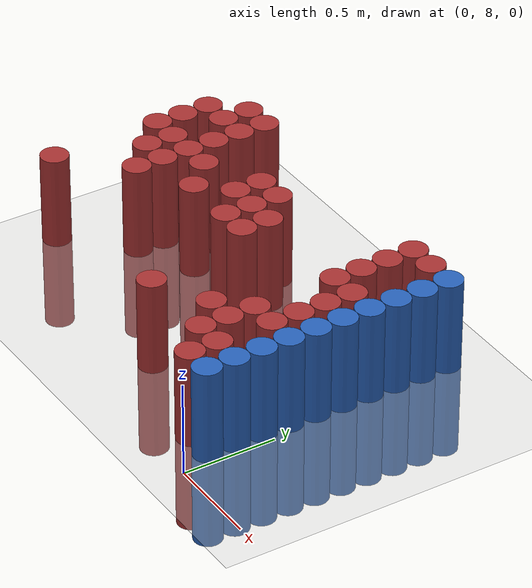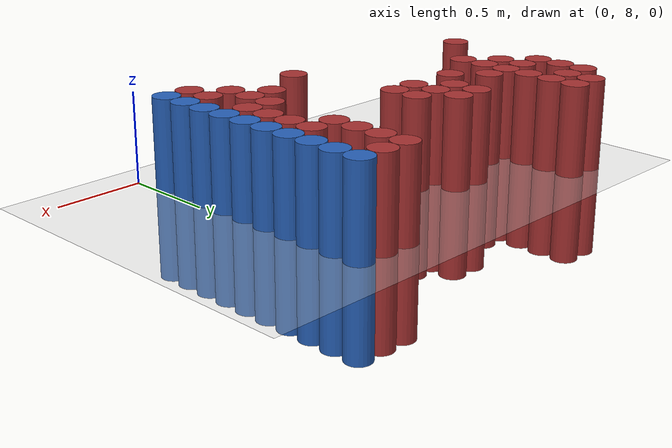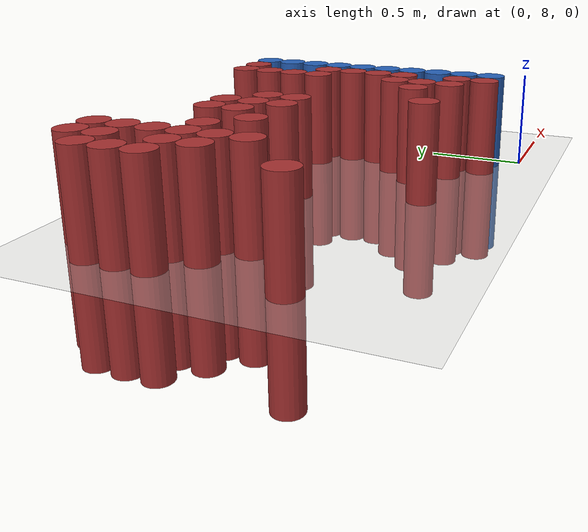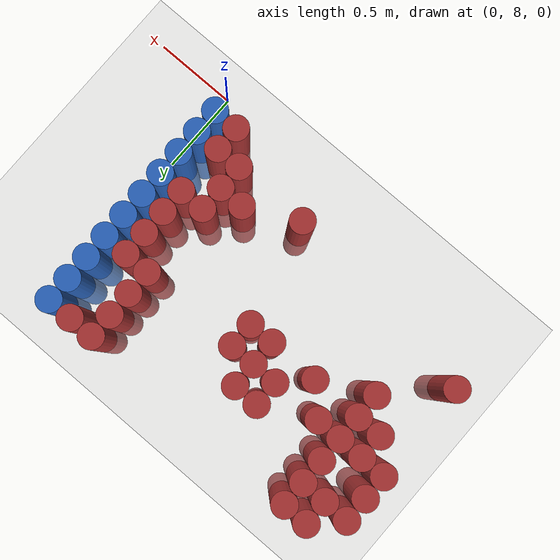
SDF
<sdf version="1.6">
 <world name="default">
  <model name="ground_plane">
   <static>1</static>
   <link name="link">
    <collision name="collision">
     <geometry><plane><normal>0 0 1</normal><size>100 100</size></plane></geometry>
     <surface><friction><ode><mu>100</mu><mu2>50</mu2></ode></friction></surface>
    </collision>
    <visual name="visual">
     <cast_shadows>0</cast_shadows>
     <geometry><plane><normal>0 0 1</normal><size>100 100</size></plane></geometry>
     <material>
      <script><uri>file://media/materials/scripts/gazebo.material</uri><name>Gazebo/Grey</name></script>
     </material>
    </visual>
   </link>
  </model>
  <model name="unit_cylinder_213">
   <static>1</static>
   <pose>-2.025000 8.475000 0.000000 0.000000 0.000000 0.000000</pose>
   <link name="link">
    <inertial>
     <mass>1</mass>
     <inertia><ixx>0.145833</ixx><ixy>0</ixy><ixz>0</ixz><iyy>0.145833</iyy><iyz>0</iyz><izz>0.125</izz></inertia>
    </inertial>
    <collision name="collision">
     <geometry><cylinder><radius>0.075000</radius><length>1</length></cylinder></geometry>
    </collision>
    <visual name="visual">
     <geometry><cylinder><radius>0.075000</radius><length>1</length></cylinder></geometry>
     <material>
      <ambient>0.648000 0.192000 0.192000 1</ambient>
      <diffuse>0.648000 0.192000 0.192000 1</diffuse>
     </material>
     <material>
      <script><name>Gazebo/Grey</name><uri>file://media/materials/scripts/gazebo.material</uri></script>
     </material>
    </visual>
   </link>
  </model>
  <model name="unit_cylinder_214">
   <static>1</static>
   <pose>-2.025000 9.075000 0.000000 0.000000 0.000000 0.000000</pose>
   <link name="link">
    <inertial>
     <mass>1</mass>
     <inertia><ixx>0.145833</ixx><ixy>0</ixy><ixz>0</ixz><iyy>0.145833</iyy><iyz>0</iyz><izz>0.125</izz></inertia>
    </inertial>
    <collision name="collision">
     <geometry><cylinder><radius>0.075000</radius><length>1</length></cylinder></geometry>
    </collision>
    <visual name="visual">
     <geometry><cylinder><radius>0.075000</radius><length>1</length></cylinder></geometry>
     <material>
      <ambient>0.648000 0.192000 0.192000 1</ambient>
      <diffuse>0.648000 0.192000 0.192000 1</diffuse>
     </material>
     <material>
      <script><name>Gazebo/Grey</name><uri>file://media/materials/scripts/gazebo.material</uri></script>
     </material>
    </visual>
   </link>
  </model>
  <model name="unit_cylinder_215">
   <static>1</static>
   <pose>-2.025000 9.225000 0.000000 0.000000 0.000000 0.000000</pose>
   <link name="link">
    <inertial>
     <mass>1</mass>
     <inertia><ixx>0.145833</ixx><ixy>0</ixy><ixz>0</ixz><iyy>0.145833</iyy><iyz>0</iyz><izz>0.125</izz></inertia>
    </inertial>
    <collision name="collision">
     <geometry><cylinder><radius>0.075000</radius><length>1</length></cylinder></geometry>
    </collision>
    <visual name="visual">
     <geometry><cylinder><radius>0.075000</radius><length>1</length></cylinder></geometry>
     <material>
      <ambient>0.648000 0.192000 0.192000 1</ambient>
      <diffuse>0.648000 0.192000 0.192000 1</diffuse>
     </material>
     <material>
      <script><name>Gazebo/Grey</name><uri>file://media/materials/scripts/gazebo.material</uri></script>
     </material>
    </visual>
   </link>
  </model>
  <model name="unit_cylinder_216">
   <static>1</static>
   <pose>-2.025000 9.375000 0.000000 0.000000 0.000000 0.000000</pose>
   <link name="link">
    <inertial>
     <mass>1</mass>
     <inertia><ixx>0.145833</ixx><ixy>0</ixy><ixz>0</ixz><iyy>0.145833</iyy><iyz>0</iyz><izz>0.125</izz></inertia>
    </inertial>
    <collision name="collision">
     <geometry><cylinder><radius>0.075000</radius><length>1</length></cylinder></geometry>
    </collision>
    <visual name="visual">
     <geometry><cylinder><radius>0.075000</radius><length>1</length></cylinder></geometry>
     <material>
      <ambient>0.648000 0.192000 0.192000 1</ambient>
      <diffuse>0.648000 0.192000 0.192000 1</diffuse>
     </material>
     <material>
      <script><name>Gazebo/Grey</name><uri>file://media/materials/scripts/gazebo.material</uri></script>
     </material>
    </visual>
   </link>
  </model>
  <model name="unit_cylinder_221">
   <static>1</static>
   <pose>-1.875000 8.925000 0.000000 0.000000 0.000000 0.000000</pose>
   <link name="link">
    <inertial>
     <mass>1</mass>
     <inertia><ixx>0.145833</ixx><ixy>0</ixy><ixz>0</ixz><iyy>0.145833</iyy><iyz>0</iyz><izz>0.125</izz></inertia>
    </inertial>
    <collision name="collision">
     <geometry><cylinder><radius>0.075000</radius><length>1</length></cylinder></geometry>
    </collision>
    <visual name="visual">
     <geometry><cylinder><radius>0.075000</radius><length>1</length></cylinder></geometry>
     <material>
      <ambient>0.648000 0.192000 0.192000 1</ambient>
      <diffuse>0.648000 0.192000 0.192000 1</diffuse>
     </material>
     <material>
      <script><name>Gazebo/Grey</name><uri>file://media/materials/scripts/gazebo.material</uri></script>
     </material>
    </visual>
   </link>
  </model>
  <model name="unit_cylinder_222">
   <static>1</static>
   <pose>-1.875000 9.075000 0.000000 0.000000 0.000000 0.000000</pose>
   <link name="link">
    <inertial>
     <mass>1</mass>
     <inertia><ixx>0.145833</ixx><ixy>0</ixy><ixz>0</ixz><iyy>0.145833</iyy><iyz>0</iyz><izz>0.125</izz></inertia>
    </inertial>
    <collision name="collision">
     <geometry><cylinder><radius>0.075000</radius><length>1</length></cylinder></geometry>
    </collision>
    <visual name="visual">
     <geometry><cylinder><radius>0.075000</radius><length>1</length></cylinder></geometry>
     <material>
      <ambient>0.648000 0.192000 0.192000 1</ambient>
      <diffuse>0.648000 0.192000 0.192000 1</diffuse>
     </material>
     <material>
      <script><name>Gazebo/Grey</name><uri>file://media/materials/scripts/gazebo.material</uri></script>
     </material>
    </visual>
   </link>
  </model>
  <model name="unit_cylinder_223">
   <static>1</static>
   <pose>-1.875000 9.375000 0.000000 0.000000 0.000000 0.000000</pose>
   <link name="link">
    <inertial>
     <mass>1</mass>
     <inertia><ixx>0.145833</ixx><ixy>0</ixy><ixz>0</ixz><iyy>0.145833</iyy><iyz>0</iyz><izz>0.125</izz></inertia>
    </inertial>
    <collision name="collision">
     <geometry><cylinder><radius>0.075000</radius><length>1</length></cylinder></geometry>
    </collision>
    <visual name="visual">
     <geometry><cylinder><radius>0.075000</radius><length>1</length></cylinder></geometry>
     <material>
      <ambient>0.648000 0.192000 0.192000 1</ambient>
      <diffuse>0.648000 0.192000 0.192000 1</diffuse>
     </material>
     <material>
      <script><name>Gazebo/Grey</name><uri>file://media/materials/scripts/gazebo.material</uri></script>
     </material>
    </visual>
   </link>
  </model>
  <model name="unit_cylinder_224">
   <static>1</static>
   <pose>-1.875000 9.525000 0.000000 0.000000 0.000000 0.000000</pose>
   <link name="link">
    <inertial>
     <mass>1</mass>
     <inertia><ixx>0.145833</ixx><ixy>0</ixy><ixz>0</ixz><iyy>0.145833</iyy><iyz>0</iyz><izz>0.125</izz></inertia>
    </inertial>
    <collision name="collision">
     <geometry><cylinder><radius>0.075000</radius><length>1</length></cylinder></geometry>
    </collision>
    <visual name="visual">
     <geometry><cylinder><radius>0.075000</radius><length>1</length></cylinder></geometry>
     <material>
      <ambient>0.648000 0.192000 0.192000 1</ambient>
      <diffuse>0.648000 0.192000 0.192000 1</diffuse>
     </material>
     <material>
      <script><name>Gazebo/Grey</name><uri>file://media/materials/scripts/gazebo.material</uri></script>
     </material>
    </visual>
   </link>
  </model>
  <model name="unit_cylinder_229">
   <static>1</static>
   <pose>-1.725000 8.775000 0.000000 0.000000 0.000000 0.000000</pose>
   <link name="link">
    <inertial>
     <mass>1</mass>
     <inertia><ixx>0.145833</ixx><ixy>0</ixy><ixz>0</ixz><iyy>0.145833</iyy><iyz>0</iyz><izz>0.125</izz></inertia>
    </inertial>
    <collision name="collision">
     <geometry><cylinder><radius>0.075000</radius><length>1</length></cylinder></geometry>
    </collision>
    <visual name="visual">
     <geometry><cylinder><radius>0.075000</radius><length>1</length></cylinder></geometry>
     <material>
      <ambient>0.648000 0.192000 0.192000 1</ambient>
      <diffuse>0.648000 0.192000 0.192000 1</diffuse>
     </material>
     <material>
      <script><name>Gazebo/Grey</name><uri>file://media/materials/scripts/gazebo.material</uri></script>
     </material>
    </visual>
   </link>
  </model>
  <model name="unit_cylinder_230">
   <static>1</static>
   <pose>-1.725000 8.925000 0.000000 0.000000 0.000000 0.000000</pose>
   <link name="link">
    <inertial>
     <mass>1</mass>
     <inertia><ixx>0.145833</ixx><ixy>0</ixy><ixz>0</ixz><iyy>0.145833</iyy><iyz>0</iyz><izz>0.125</izz></inertia>
    </inertial>
    <collision name="collision">
     <geometry><cylinder><radius>0.075000</radius><length>1</length></cylinder></geometry>
    </collision>
    <visual name="visual">
     <geometry><cylinder><radius>0.075000</radius><length>1</length></cylinder></geometry>
     <material>
      <ambient>0.648000 0.192000 0.192000 1</ambient>
      <diffuse>0.648000 0.192000 0.192000 1</diffuse>
     </material>
     <material>
      <script><name>Gazebo/Grey</name><uri>file://media/materials/scripts/gazebo.material</uri></script>
     </material>
    </visual>
   </link>
  </model>
  <model name="unit_cylinder_231">
   <static>1</static>
   <pose>-1.725000 9.075000 0.000000 0.000000 0.000000 0.000000</pose>
   <link name="link">
    <inertial>
     <mass>1</mass>
     <inertia><ixx>0.145833</ixx><ixy>0</ixy><ixz>0</ixz><iyy>0.145833</iyy><iyz>0</iyz><izz>0.125</izz></inertia>
    </inertial>
    <collision name="collision">
     <geometry><cylinder><radius>0.075000</radius><length>1</length></cylinder></geometry>
    </collision>
    <visual name="visual">
     <geometry><cylinder><radius>0.075000</radius><length>1</length></cylinder></geometry>
     <material>
      <ambient>0.648000 0.192000 0.192000 1</ambient>
      <diffuse>0.648000 0.192000 0.192000 1</diffuse>
     </material>
     <material>
      <script><name>Gazebo/Grey</name><uri>file://media/materials/scripts/gazebo.material</uri></script>
     </material>
    </visual>
   </link>
  </model>
  <model name="unit_cylinder_232">
   <static>1</static>
   <pose>-1.725000 9.225000 0.000000 0.000000 0.000000 0.000000</pose>
   <link name="link">
    <inertial>
     <mass>1</mass>
     <inertia><ixx>0.145833</ixx><ixy>0</ixy><ixz>0</ixz><iyy>0.145833</iyy><iyz>0</iyz><izz>0.125</izz></inertia>
    </inertial>
    <collision name="collision">
     <geometry><cylinder><radius>0.075000</radius><length>1</length></cylinder></geometry>
    </collision>
    <visual name="visual">
     <geometry><cylinder><radius>0.075000</radius><length>1</length></cylinder></geometry>
     <material>
      <ambient>0.648000 0.192000 0.192000 1</ambient>
      <diffuse>0.648000 0.192000 0.192000 1</diffuse>
     </material>
     <material>
      <script><name>Gazebo/Grey</name><uri>file://media/materials/scripts/gazebo.material</uri></script>
     </material>
    </visual>
   </link>
  </model>
  <model name="unit_cylinder_233">
   <static>1</static>
   <pose>-1.725000 9.375000 0.000000 0.000000 0.000000 0.000000</pose>
   <link name="link">
    <inertial>
     <mass>1</mass>
     <inertia><ixx>0.145833</ixx><ixy>0</ixy><ixz>0</ixz><iyy>0.145833</iyy><iyz>0</iyz><izz>0.125</izz></inertia>
    </inertial>
    <collision name="collision">
     <geometry><cylinder><radius>0.075000</radius><length>1</length></cylinder></geometry>
    </collision>
    <visual name="visual">
     <geometry><cylinder><radius>0.075000</radius><length>1</length></cylinder></geometry>
     <material>
      <ambient>0.648000 0.192000 0.192000 1</ambient>
      <diffuse>0.648000 0.192000 0.192000 1</diffuse>
     </material>
     <material>
      <script><name>Gazebo/Grey</name><uri>file://media/materials/scripts/gazebo.material</uri></script>
     </material>
    </visual>
   </link>
  </model>
  <model name="unit_cylinder_234">
   <static>1</static>
   <pose>-1.725000 9.525000 0.000000 0.000000 0.000000 0.000000</pose>
   <link name="link">
    <inertial>
     <mass>1</mass>
     <inertia><ixx>0.145833</ixx><ixy>0</ixy><ixz>0</ixz><iyy>0.145833</iyy><iyz>0</iyz><izz>0.125</izz></inertia>
    </inertial>
    <collision name="collision">
     <geometry><cylinder><radius>0.075000</radius><length>1</length></cylinder></geometry>
    </collision>
    <visual name="visual">
     <geometry><cylinder><radius>0.075000</radius><length>1</length></cylinder></geometry>
     <material>
      <ambient>0.648000 0.192000 0.192000 1</ambient>
      <diffuse>0.648000 0.192000 0.192000 1</diffuse>
     </material>
     <material>
      <script><name>Gazebo/Grey</name><uri>file://media/materials/scripts/gazebo.material</uri></script>
     </material>
    </visual>
   </link>
  </model>
  <model name="unit_cylinder_242">
   <static>1</static>
   <pose>-1.575000 9.075000 0.000000 0.000000 0.000000 0.000000</pose>
   <link name="link">
    <inertial>
     <mass>1</mass>
     <inertia><ixx>0.145833</ixx><ixy>0</ixy><ixz>0</ixz><iyy>0.145833</iyy><iyz>0</iyz><izz>0.125</izz></inertia>
    </inertial>
    <collision name="collision">
     <geometry><cylinder><radius>0.075000</radius><length>1</length></cylinder></geometry>
    </collision>
    <visual name="visual">
     <geometry><cylinder><radius>0.075000</radius><length>1</length></cylinder></geometry>
     <material>
      <ambient>0.648000 0.192000 0.192000 1</ambient>
      <diffuse>0.648000 0.192000 0.192000 1</diffuse>
     </material>
     <material>
      <script><name>Gazebo/Grey</name><uri>file://media/materials/scripts/gazebo.material</uri></script>
     </material>
    </visual>
   </link>
  </model>
  <model name="unit_cylinder_248">
   <static>1</static>
   <pose>-1.425000 8.925000 0.000000 0.000000 0.000000 0.000000</pose>
   <link name="link">
    <inertial>
     <mass>1</mass>
     <inertia><ixx>0.145833</ixx><ixy>0</ixy><ixz>0</ixz><iyy>0.145833</iyy><iyz>0</iyz><izz>0.125</izz></inertia>
    </inertial>
    <collision name="collision">
     <geometry><cylinder><radius>0.075000</radius><length>1</length></cylinder></geometry>
    </collision>
    <visual name="visual">
     <geometry><cylinder><radius>0.075000</radius><length>1</length></cylinder></geometry>
     <material>
      <ambient>0.648000 0.192000 0.192000 1</ambient>
      <diffuse>0.648000 0.192000 0.192000 1</diffuse>
     </material>
     <material>
      <script><name>Gazebo/Grey</name><uri>file://media/materials/scripts/gazebo.material</uri></script>
     </material>
    </visual>
   </link>
  </model>
  <model name="unit_cylinder_253">
   <static>1</static>
   <pose>-1.275000 9.075000 0.000000 0.000000 0.000000 0.000000</pose>
   <link name="link">
    <inertial>
     <mass>1</mass>
     <inertia><ixx>0.145833</ixx><ixy>0</ixy><ixz>0</ixz><iyy>0.145833</iyy><iyz>0</iyz><izz>0.125</izz></inertia>
    </inertial>
    <collision name="collision">
     <geometry><cylinder><radius>0.075000</radius><length>1</length></cylinder></geometry>
    </collision>
    <visual name="visual">
     <geometry><cylinder><radius>0.075000</radius><length>1</length></cylinder></geometry>
     <material>
      <ambient>0.648000 0.192000 0.192000 1</ambient>
      <diffuse>0.648000 0.192000 0.192000 1</diffuse>
     </material>
     <material>
      <script><name>Gazebo/Grey</name><uri>file://media/materials/scripts/gazebo.material</uri></script>
     </material>
    </visual>
   </link>
  </model>
  <model name="unit_cylinder_254">
   <static>1</static>
   <pose>-1.275000 9.225000 0.000000 0.000000 0.000000 0.000000</pose>
   <link name="link">
    <inertial>
     <mass>1</mass>
     <inertia><ixx>0.145833</ixx><ixy>0</ixy><ixz>0</ixz><iyy>0.145833</iyy><iyz>0</iyz><izz>0.125</izz></inertia>
    </inertial>
    <collision name="collision">
     <geometry><cylinder><radius>0.075000</radius><length>1</length></cylinder></geometry>
    </collision>
    <visual name="visual">
     <geometry><cylinder><radius>0.075000</radius><length>1</length></cylinder></geometry>
     <material>
      <ambient>0.648000 0.192000 0.192000 1</ambient>
      <diffuse>0.648000 0.192000 0.192000 1</diffuse>
     </material>
     <material>
      <script><name>Gazebo/Grey</name><uri>file://media/materials/scripts/gazebo.material</uri></script>
     </material>
    </visual>
   </link>
  </model>
  <model name="unit_cylinder_257">
   <static>1</static>
   <pose>-1.125000 8.925000 0.000000 0.000000 0.000000 0.000000</pose>
   <link name="link">
    <inertial>
     <mass>1</mass>
     <inertia><ixx>0.145833</ixx><ixy>0</ixy><ixz>0</ixz><iyy>0.145833</iyy><iyz>0</iyz><izz>0.125</izz></inertia>
    </inertial>
    <collision name="collision">
     <geometry><cylinder><radius>0.075000</radius><length>1</length></cylinder></geometry>
    </collision>
    <visual name="visual">
     <geometry><cylinder><radius>0.075000</radius><length>1</length></cylinder></geometry>
     <material>
      <ambient>0.648000 0.192000 0.192000 1</ambient>
      <diffuse>0.648000 0.192000 0.192000 1</diffuse>
     </material>
     <material>
      <script><name>Gazebo/Grey</name><uri>file://media/materials/scripts/gazebo.material</uri></script>
     </material>
    </visual>
   </link>
  </model>
  <model name="unit_cylinder_258">
   <static>1</static>
   <pose>-1.125000 9.075000 0.000000 0.000000 0.000000 0.000000</pose>
   <link name="link">
    <inertial>
     <mass>1</mass>
     <inertia><ixx>0.145833</ixx><ixy>0</ixy><ixz>0</ixz><iyy>0.145833</iyy><iyz>0</iyz><izz>0.125</izz></inertia>
    </inertial>
    <collision name="collision">
     <geometry><cylinder><radius>0.075000</radius><length>1</length></cylinder></geometry>
    </collision>
    <visual name="visual">
     <geometry><cylinder><radius>0.075000</radius><length>1</length></cylinder></geometry>
     <material>
      <ambient>0.648000 0.192000 0.192000 1</ambient>
      <diffuse>0.648000 0.192000 0.192000 1</diffuse>
     </material>
     <material>
      <script><name>Gazebo/Grey</name><uri>file://media/materials/scripts/gazebo.material</uri></script>
     </material>
    </visual>
   </link>
  </model>
  <model name="unit_cylinder_259">
   <static>1</static>
   <pose>-1.125000 9.225000 0.000000 0.000000 0.000000 0.000000</pose>
   <link name="link">
    <inertial>
     <mass>1</mass>
     <inertia><ixx>0.145833</ixx><ixy>0</ixy><ixz>0</ixz><iyy>0.145833</iyy><iyz>0</iyz><izz>0.125</izz></inertia>
    </inertial>
    <collision name="collision">
     <geometry><cylinder><radius>0.075000</radius><length>1</length></cylinder></geometry>
    </collision>
    <visual name="visual">
     <geometry><cylinder><radius>0.075000</radius><length>1</length></cylinder></geometry>
     <material>
      <ambient>0.648000 0.192000 0.192000 1</ambient>
      <diffuse>0.648000 0.192000 0.192000 1</diffuse>
     </material>
     <material>
      <script><name>Gazebo/Grey</name><uri>file://media/materials/scripts/gazebo.material</uri></script>
     </material>
    </visual>
   </link>
  </model>
  <model name="unit_cylinder_264">
   <static>1</static>
   <pose>-0.975000 8.925000 0.000000 0.000000 0.000000 0.000000</pose>
   <link name="link">
    <inertial>
     <mass>1</mass>
     <inertia><ixx>0.145833</ixx><ixy>0</ixy><ixz>0</ixz><iyy>0.145833</iyy><iyz>0</iyz><izz>0.125</izz></inertia>
    </inertial>
    <collision name="collision">
     <geometry><cylinder><radius>0.075000</radius><length>1</length></cylinder></geometry>
    </collision>
    <visual name="visual">
     <geometry><cylinder><radius>0.075000</radius><length>1</length></cylinder></geometry>
     <material>
      <ambient>0.648000 0.192000 0.192000 1</ambient>
      <diffuse>0.648000 0.192000 0.192000 1</diffuse>
     </material>
     <material>
      <script><name>Gazebo/Grey</name><uri>file://media/materials/scripts/gazebo.material</uri></script>
     </material>
    </visual>
   </link>
  </model>
  <model name="unit_cylinder_265">
   <static>1</static>
   <pose>-0.975000 9.075000 0.000000 0.000000 0.000000 0.000000</pose>
   <link name="link">
    <inertial>
     <mass>1</mass>
     <inertia><ixx>0.145833</ixx><ixy>0</ixy><ixz>0</ixz><iyy>0.145833</iyy><iyz>0</iyz><izz>0.125</izz></inertia>
    </inertial>
    <collision name="collision">
     <geometry><cylinder><radius>0.075000</radius><length>1</length></cylinder></geometry>
    </collision>
    <visual name="visual">
     <geometry><cylinder><radius>0.075000</radius><length>1</length></cylinder></geometry>
     <material>
      <ambient>0.648000 0.192000 0.192000 1</ambient>
      <diffuse>0.648000 0.192000 0.192000 1</diffuse>
     </material>
     <material>
      <script><name>Gazebo/Grey</name><uri>file://media/materials/scripts/gazebo.material</uri></script>
     </material>
    </visual>
   </link>
  </model>
  <model name="unit_cylinder_274">
   <static>1</static>
   <pose>-0.825000 8.325000 0.000000 0.000000 0.000000 0.000000</pose>
   <link name="link">
    <inertial>
     <mass>1</mass>
     <inertia><ixx>0.145833</ixx><ixy>0</ixy><ixz>0</ixz><iyy>0.145833</iyy><iyz>0</iyz><izz>0.125</izz></inertia>
    </inertial>
    <collision name="collision">
     <geometry><cylinder><radius>0.075000</radius><length>1</length></cylinder></geometry>
    </collision>
    <visual name="visual">
     <geometry><cylinder><radius>0.075000</radius><length>1</length></cylinder></geometry>
     <material>
      <ambient>0.648000 0.192000 0.192000 1</ambient>
      <diffuse>0.648000 0.192000 0.192000 1</diffuse>
     </material>
     <material>
      <script><name>Gazebo/Grey</name><uri>file://media/materials/scripts/gazebo.material</uri></script>
     </material>
    </visual>
   </link>
  </model>
  <model name="unit_cylinder_282">
   <static>1</static>
   <pose>-0.525000 8.475000 0.000000 0.000000 0.000000 0.000000</pose>
   <link name="link">
    <inertial>
     <mass>1</mass>
     <inertia><ixx>0.145833</ixx><ixy>0</ixy><ixz>0</ixz><iyy>0.145833</iyy><iyz>0</iyz><izz>0.125</izz></inertia>
    </inertial>
    <collision name="collision">
     <geometry><cylinder><radius>0.075000</radius><length>1</length></cylinder></geometry>
    </collision>
    <visual name="visual">
     <geometry><cylinder><radius>0.075000</radius><length>1</length></cylinder></geometry>
     <material>
      <ambient>0.648000 0.192000 0.192000 1</ambient>
      <diffuse>0.648000 0.192000 0.192000 1</diffuse>
     </material>
     <material>
      <script><name>Gazebo/Grey</name><uri>file://media/materials/scripts/gazebo.material</uri></script>
     </material>
    </visual>
   </link>
  </model>
  <model name="unit_cylinder_286">
   <static>1</static>
   <pose>-0.375000 8.325000 0.000000 0.000000 0.000000 0.000000</pose>
   <link name="link">
    <inertial>
     <mass>1</mass>
     <inertia><ixx>0.145833</ixx><ixy>0</ixy><ixz>0</ixz><iyy>0.145833</iyy><iyz>0</iyz><izz>0.125</izz></inertia>
    </inertial>
    <collision name="collision">
     <geometry><cylinder><radius>0.075000</radius><length>1</length></cylinder></geometry>
    </collision>
    <visual name="visual">
     <geometry><cylinder><radius>0.075000</radius><length>1</length></cylinder></geometry>
     <material>
      <ambient>0.648000 0.192000 0.192000 1</ambient>
      <diffuse>0.648000 0.192000 0.192000 1</diffuse>
     </material>
     <material>
      <script><name>Gazebo/Grey</name><uri>file://media/materials/scripts/gazebo.material</uri></script>
     </material>
    </visual>
   </link>
  </model>
  <model name="unit_cylinder_287">
   <static>1</static>
   <pose>-0.375000 8.475000 0.000000 0.000000 0.000000 0.000000</pose>
   <link name="link">
    <inertial>
     <mass>1</mass>
     <inertia><ixx>0.145833</ixx><ixy>0</ixy><ixz>0</ixz><iyy>0.145833</iyy><iyz>0</iyz><izz>0.125</izz></inertia>
    </inertial>
    <collision name="collision">
     <geometry><cylinder><radius>0.075000</radius><length>1</length></cylinder></geometry>
    </collision>
    <visual name="visual">
     <geometry><cylinder><radius>0.075000</radius><length>1</length></cylinder></geometry>
     <material>
      <ambient>0.648000 0.192000 0.192000 1</ambient>
      <diffuse>0.648000 0.192000 0.192000 1</diffuse>
     </material>
     <material>
      <script><name>Gazebo/Grey</name><uri>file://media/materials/scripts/gazebo.material</uri></script>
     </material>
    </visual>
   </link>
  </model>
  <model name="unit_cylinder_288">
   <static>1</static>
   <pose>-0.375000 8.625000 0.000000 0.000000 0.000000 0.000000</pose>
   <link name="link">
    <inertial>
     <mass>1</mass>
     <inertia><ixx>0.145833</ixx><ixy>0</ixy><ixz>0</ixz><iyy>0.145833</iyy><iyz>0</iyz><izz>0.125</izz></inertia>
    </inertial>
    <collision name="collision">
     <geometry><cylinder><radius>0.075000</radius><length>1</length></cylinder></geometry>
    </collision>
    <visual name="visual">
     <geometry><cylinder><radius>0.075000</radius><length>1</length></cylinder></geometry>
     <material>
      <ambient>0.648000 0.192000 0.192000 1</ambient>
      <diffuse>0.648000 0.192000 0.192000 1</diffuse>
     </material>
     <material>
      <script><name>Gazebo/Grey</name><uri>file://media/materials/scripts/gazebo.material</uri></script>
     </material>
    </visual>
   </link>
  </model>
  <model name="unit_cylinder_289">
   <static>1</static>
   <pose>-0.375000 9.075000 0.000000 0.000000 0.000000 0.000000</pose>
   <link name="link">
    <inertial>
     <mass>1</mass>
     <inertia><ixx>0.145833</ixx><ixy>0</ixy><ixz>0</ixz><iyy>0.145833</iyy><iyz>0</iyz><izz>0.125</izz></inertia>
    </inertial>
    <collision name="collision">
     <geometry><cylinder><radius>0.075000</radius><length>1</length></cylinder></geometry>
    </collision>
    <visual name="visual">
     <geometry><cylinder><radius>0.075000</radius><length>1</length></cylinder></geometry>
     <material>
      <ambient>0.648000 0.192000 0.192000 1</ambient>
      <diffuse>0.648000 0.192000 0.192000 1</diffuse>
     </material>
     <material>
      <script><name>Gazebo/Grey</name><uri>file://media/materials/scripts/gazebo.material</uri></script>
     </material>
    </visual>
   </link>
  </model>
  <model name="unit_cylinder_290">
   <static>1</static>
   <pose>-0.375000 9.225000 0.000000 0.000000 0.000000 0.000000</pose>
   <link name="link">
    <inertial>
     <mass>1</mass>
     <inertia><ixx>0.145833</ixx><ixy>0</ixy><ixz>0</ixz><iyy>0.145833</iyy><iyz>0</iyz><izz>0.125</izz></inertia>
    </inertial>
    <collision name="collision">
     <geometry><cylinder><radius>0.075000</radius><length>1</length></cylinder></geometry>
    </collision>
    <visual name="visual">
     <geometry><cylinder><radius>0.075000</radius><length>1</length></cylinder></geometry>
     <material>
      <ambient>0.648000 0.192000 0.192000 1</ambient>
      <diffuse>0.648000 0.192000 0.192000 1</diffuse>
     </material>
     <material>
      <script><name>Gazebo/Grey</name><uri>file://media/materials/scripts/gazebo.material</uri></script>
     </material>
    </visual>
   </link>
  </model>
  <model name="unit_cylinder_291">
   <static>1</static>
   <pose>-0.375000 9.375000 0.000000 0.000000 0.000000 0.000000</pose>
   <link name="link">
    <inertial>
     <mass>1</mass>
     <inertia><ixx>0.145833</ixx><ixy>0</ixy><ixz>0</ixz><iyy>0.145833</iyy><iyz>0</iyz><izz>0.125</izz></inertia>
    </inertial>
    <collision name="collision">
     <geometry><cylinder><radius>0.075000</radius><length>1</length></cylinder></geometry>
    </collision>
    <visual name="visual">
     <geometry><cylinder><radius>0.075000</radius><length>1</length></cylinder></geometry>
     <material>
      <ambient>0.648000 0.192000 0.192000 1</ambient>
      <diffuse>0.648000 0.192000 0.192000 1</diffuse>
     </material>
     <material>
      <script><name>Gazebo/Grey</name><uri>file://media/materials/scripts/gazebo.material</uri></script>
     </material>
    </visual>
   </link>
  </model>
  <model name="unit_cylinder_292">
   <static>1</static>
   <pose>-0.375000 9.525000 0.000000 0.000000 0.000000 0.000000</pose>
   <link name="link">
    <inertial>
     <mass>1</mass>
     <inertia><ixx>0.145833</ixx><ixy>0</ixy><ixz>0</ixz><iyy>0.145833</iyy><iyz>0</iyz><izz>0.125</izz></inertia>
    </inertial>
    <collision name="collision">
     <geometry><cylinder><radius>0.075000</radius><length>1</length></cylinder></geometry>
    </collision>
    <visual name="visual">
     <geometry><cylinder><radius>0.075000</radius><length>1</length></cylinder></geometry>
     <material>
      <ambient>0.648000 0.192000 0.192000 1</ambient>
      <diffuse>0.648000 0.192000 0.192000 1</diffuse>
     </material>
     <material>
      <script><name>Gazebo/Grey</name><uri>file://media/materials/scripts/gazebo.material</uri></script>
     </material>
    </visual>
   </link>
  </model>
  <model name="unit_cylinder_304">
   <static>1</static>
   <pose>-0.225000 8.175000 0.000000 0.000000 0.000000 0.000000</pose>
   <link name="link">
    <inertial>
     <mass>1</mass>
     <inertia><ixx>0.145833</ixx><ixy>0</ixy><ixz>0</ixz><iyy>0.145833</iyy><iyz>0</iyz><izz>0.125</izz></inertia>
    </inertial>
    <collision name="collision">
     <geometry><cylinder><radius>0.075000</radius><length>1</length></cylinder></geometry>
    </collision>
    <visual name="visual">
     <geometry><cylinder><radius>0.075000</radius><length>1</length></cylinder></geometry>
     <material>
      <ambient>0.648000 0.192000 0.192000 1</ambient>
      <diffuse>0.648000 0.192000 0.192000 1</diffuse>
     </material>
     <material>
      <script><name>Gazebo/Grey</name><uri>file://media/materials/scripts/gazebo.material</uri></script>
     </material>
    </visual>
   </link>
  </model>
  <model name="unit_cylinder_305">
   <static>1</static>
   <pose>-0.225000 8.325000 0.000000 0.000000 0.000000 0.000000</pose>
   <link name="link">
    <inertial>
     <mass>1</mass>
     <inertia><ixx>0.145833</ixx><ixy>0</ixy><ixz>0</ixz><iyy>0.145833</iyy><iyz>0</iyz><izz>0.125</izz></inertia>
    </inertial>
    <collision name="collision">
     <geometry><cylinder><radius>0.075000</radius><length>1</length></cylinder></geometry>
    </collision>
    <visual name="visual">
     <geometry><cylinder><radius>0.075000</radius><length>1</length></cylinder></geometry>
     <material>
      <ambient>0.648000 0.192000 0.192000 1</ambient>
      <diffuse>0.648000 0.192000 0.192000 1</diffuse>
     </material>
     <material>
      <script><name>Gazebo/Grey</name><uri>file://media/materials/scripts/gazebo.material</uri></script>
     </material>
    </visual>
   </link>
  </model>
  <model name="unit_cylinder_306">
   <static>1</static>
   <pose>-0.225000 8.625000 0.000000 0.000000 0.000000 0.000000</pose>
   <link name="link">
    <inertial>
     <mass>1</mass>
     <inertia><ixx>0.145833</ixx><ixy>0</ixy><ixz>0</ixz><iyy>0.145833</iyy><iyz>0</iyz><izz>0.125</izz></inertia>
    </inertial>
    <collision name="collision">
     <geometry><cylinder><radius>0.075000</radius><length>1</length></cylinder></geometry>
    </collision>
    <visual name="visual">
     <geometry><cylinder><radius>0.075000</radius><length>1</length></cylinder></geometry>
     <material>
      <ambient>0.648000 0.192000 0.192000 1</ambient>
      <diffuse>0.648000 0.192000 0.192000 1</diffuse>
     </material>
     <material>
      <script><name>Gazebo/Grey</name><uri>file://media/materials/scripts/gazebo.material</uri></script>
     </material>
    </visual>
   </link>
  </model>
  <model name="unit_cylinder_307">
   <static>1</static>
   <pose>-0.225000 8.775000 0.000000 0.000000 0.000000 0.000000</pose>
   <link name="link">
    <inertial>
     <mass>1</mass>
     <inertia><ixx>0.145833</ixx><ixy>0</ixy><ixz>0</ixz><iyy>0.145833</iyy><iyz>0</iyz><izz>0.125</izz></inertia>
    </inertial>
    <collision name="collision">
     <geometry><cylinder><radius>0.075000</radius><length>1</length></cylinder></geometry>
    </collision>
    <visual name="visual">
     <geometry><cylinder><radius>0.075000</radius><length>1</length></cylinder></geometry>
     <material>
      <ambient>0.648000 0.192000 0.192000 1</ambient>
      <diffuse>0.648000 0.192000 0.192000 1</diffuse>
     </material>
     <material>
      <script><name>Gazebo/Grey</name><uri>file://media/materials/scripts/gazebo.material</uri></script>
     </material>
    </visual>
   </link>
  </model>
  <model name="unit_cylinder_308">
   <static>1</static>
   <pose>-0.225000 8.925000 0.000000 0.000000 0.000000 0.000000</pose>
   <link name="link">
    <inertial>
     <mass>1</mass>
     <inertia><ixx>0.145833</ixx><ixy>0</ixy><ixz>0</ixz><iyy>0.145833</iyy><iyz>0</iyz><izz>0.125</izz></inertia>
    </inertial>
    <collision name="collision">
     <geometry><cylinder><radius>0.075000</radius><length>1</length></cylinder></geometry>
    </collision>
    <visual name="visual">
     <geometry><cylinder><radius>0.075000</radius><length>1</length></cylinder></geometry>
     <material>
      <ambient>0.648000 0.192000 0.192000 1</ambient>
      <diffuse>0.648000 0.192000 0.192000 1</diffuse>
     </material>
     <material>
      <script><name>Gazebo/Grey</name><uri>file://media/materials/scripts/gazebo.material</uri></script>
     </material>
    </visual>
   </link>
  </model>
  <model name="unit_cylinder_309">
   <static>1</static>
   <pose>-0.225000 9.075000 0.000000 0.000000 0.000000 0.000000</pose>
   <link name="link">
    <inertial>
     <mass>1</mass>
     <inertia><ixx>0.145833</ixx><ixy>0</ixy><ixz>0</ixz><iyy>0.145833</iyy><iyz>0</iyz><izz>0.125</izz></inertia>
    </inertial>
    <collision name="collision">
     <geometry><cylinder><radius>0.075000</radius><length>1</length></cylinder></geometry>
    </collision>
    <visual name="visual">
     <geometry><cylinder><radius>0.075000</radius><length>1</length></cylinder></geometry>
     <material>
      <ambient>0.648000 0.192000 0.192000 1</ambient>
      <diffuse>0.648000 0.192000 0.192000 1</diffuse>
     </material>
     <material>
      <script><name>Gazebo/Grey</name><uri>file://media/materials/scripts/gazebo.material</uri></script>
     </material>
    </visual>
   </link>
  </model>
  <model name="unit_cylinder_310">
   <static>1</static>
   <pose>-0.225000 9.525000 0.000000 0.000000 0.000000 0.000000</pose>
   <link name="link">
    <inertial>
     <mass>1</mass>
     <inertia><ixx>0.145833</ixx><ixy>0</ixy><ixz>0</ixz><iyy>0.145833</iyy><iyz>0</iyz><izz>0.125</izz></inertia>
    </inertial>
    <collision name="collision">
     <geometry><cylinder><radius>0.075000</radius><length>1</length></cylinder></geometry>
    </collision>
    <visual name="visual">
     <geometry><cylinder><radius>0.075000</radius><length>1</length></cylinder></geometry>
     <material>
      <ambient>0.648000 0.192000 0.192000 1</ambient>
      <diffuse>0.648000 0.192000 0.192000 1</diffuse>
     </material>
     <material>
      <script><name>Gazebo/Grey</name><uri>file://media/materials/scripts/gazebo.material</uri></script>
     </material>
    </visual>
   </link>
  </model>
  <model name="unit_cylinder_331">
   <static>1</static>
   <pose>-0.075000 8.175000 0.000000 0.000000 0.000000 0.000000</pose>
   <link name="link">
    <inertial>
     <mass>1</mass>
     <inertia><ixx>0.145833</ixx><ixy>0</ixy><ixz>0</ixz><iyy>0.145833</iyy><iyz>0</iyz><izz>0.125</izz></inertia>
    </inertial>
    <collision name="collision">
     <geometry><cylinder><radius>0.075000</radius><length>1</length></cylinder></geometry>
    </collision>
    <visual name="visual">
     <geometry><cylinder><radius>0.075000</radius><length>1</length></cylinder></geometry>
     <material>
      <ambient>0.152000 0.379000 0.720000 1</ambient>
      <diffuse>0.152000 0.379000 0.720000 1</diffuse>
     </material>
     <material>
      <script><name>Gazebo/Grey</name><uri>file://media/materials/scripts/gazebo.material</uri></script>
     </material>
    </visual>
   </link>
  </model>
  <model name="unit_cylinder_332">
   <static>1</static>
   <pose>-0.075000 8.325000 0.000000 0.000000 0.000000 0.000000</pose>
   <link name="link">
    <inertial>
     <mass>1</mass>
     <inertia><ixx>0.145833</ixx><ixy>0</ixy><ixz>0</ixz><iyy>0.145833</iyy><iyz>0</iyz><izz>0.125</izz></inertia>
    </inertial>
    <collision name="collision">
     <geometry><cylinder><radius>0.075000</radius><length>1</length></cylinder></geometry>
    </collision>
    <visual name="visual">
     <geometry><cylinder><radius>0.075000</radius><length>1</length></cylinder></geometry>
     <material>
      <ambient>0.152000 0.379000 0.720000 1</ambient>
      <diffuse>0.152000 0.379000 0.720000 1</diffuse>
     </material>
     <material>
      <script><name>Gazebo/Grey</name><uri>file://media/materials/scripts/gazebo.material</uri></script>
     </material>
    </visual>
   </link>
  </model>
  <model name="unit_cylinder_333">
   <static>1</static>
   <pose>-0.075000 8.475000 0.000000 0.000000 0.000000 0.000000</pose>
   <link name="link">
    <inertial>
     <mass>1</mass>
     <inertia><ixx>0.145833</ixx><ixy>0</ixy><ixz>0</ixz><iyy>0.145833</iyy><iyz>0</iyz><izz>0.125</izz></inertia>
    </inertial>
    <collision name="collision">
     <geometry><cylinder><radius>0.075000</radius><length>1</length></cylinder></geometry>
    </collision>
    <visual name="visual">
     <geometry><cylinder><radius>0.075000</radius><length>1</length></cylinder></geometry>
     <material>
      <ambient>0.152000 0.379000 0.720000 1</ambient>
      <diffuse>0.152000 0.379000 0.720000 1</diffuse>
     </material>
     <material>
      <script><name>Gazebo/Grey</name><uri>file://media/materials/scripts/gazebo.material</uri></script>
     </material>
    </visual>
   </link>
  </model>
  <model name="unit_cylinder_334">
   <static>1</static>
   <pose>-0.075000 8.625000 0.000000 0.000000 0.000000 0.000000</pose>
   <link name="link">
    <inertial>
     <mass>1</mass>
     <inertia><ixx>0.145833</ixx><ixy>0</ixy><ixz>0</ixz><iyy>0.145833</iyy><iyz>0</iyz><izz>0.125</izz></inertia>
    </inertial>
    <collision name="collision">
     <geometry><cylinder><radius>0.075000</radius><length>1</length></cylinder></geometry>
    </collision>
    <visual name="visual">
     <geometry><cylinder><radius>0.075000</radius><length>1</length></cylinder></geometry>
     <material>
      <ambient>0.152000 0.379000 0.720000 1</ambient>
      <diffuse>0.152000 0.379000 0.720000 1</diffuse>
     </material>
     <material>
      <script><name>Gazebo/Grey</name><uri>file://media/materials/scripts/gazebo.material</uri></script>
     </material>
    </visual>
   </link>
  </model>
  <model name="unit_cylinder_335">
   <static>1</static>
   <pose>-0.075000 8.775000 0.000000 0.000000 0.000000 0.000000</pose>
   <link name="link">
    <inertial>
     <mass>1</mass>
     <inertia><ixx>0.145833</ixx><ixy>0</ixy><ixz>0</ixz><iyy>0.145833</iyy><iyz>0</iyz><izz>0.125</izz></inertia>
    </inertial>
    <collision name="collision">
     <geometry><cylinder><radius>0.075000</radius><length>1</length></cylinder></geometry>
    </collision>
    <visual name="visual">
     <geometry><cylinder><radius>0.075000</radius><length>1</length></cylinder></geometry>
     <material>
      <ambient>0.152000 0.379000 0.720000 1</ambient>
      <diffuse>0.152000 0.379000 0.720000 1</diffuse>
     </material>
     <material>
      <script><name>Gazebo/Grey</name><uri>file://media/materials/scripts/gazebo.material</uri></script>
     </material>
    </visual>
   </link>
  </model>
  <model name="unit_cylinder_336">
   <static>1</static>
   <pose>-0.075000 8.925000 0.000000 0.000000 0.000000 0.000000</pose>
   <link name="link">
    <inertial>
     <mass>1</mass>
     <inertia><ixx>0.145833</ixx><ixy>0</ixy><ixz>0</ixz><iyy>0.145833</iyy><iyz>0</iyz><izz>0.125</izz></inertia>
    </inertial>
    <collision name="collision">
     <geometry><cylinder><radius>0.075000</radius><length>1</length></cylinder></geometry>
    </collision>
    <visual name="visual">
     <geometry><cylinder><radius>0.075000</radius><length>1</length></cylinder></geometry>
     <material>
      <ambient>0.152000 0.379000 0.720000 1</ambient>
      <diffuse>0.152000 0.379000 0.720000 1</diffuse>
     </material>
     <material>
      <script><name>Gazebo/Grey</name><uri>file://media/materials/scripts/gazebo.material</uri></script>
     </material>
    </visual>
   </link>
  </model>
  <model name="unit_cylinder_337">
   <static>1</static>
   <pose>-0.075000 9.075000 0.000000 0.000000 0.000000 0.000000</pose>
   <link name="link">
    <inertial>
     <mass>1</mass>
     <inertia><ixx>0.145833</ixx><ixy>0</ixy><ixz>0</ixz><iyy>0.145833</iyy><iyz>0</iyz><izz>0.125</izz></inertia>
    </inertial>
    <collision name="collision">
     <geometry><cylinder><radius>0.075000</radius><length>1</length></cylinder></geometry>
    </collision>
    <visual name="visual">
     <geometry><cylinder><radius>0.075000</radius><length>1</length></cylinder></geometry>
     <material>
      <ambient>0.152000 0.379000 0.720000 1</ambient>
      <diffuse>0.152000 0.379000 0.720000 1</diffuse>
     </material>
     <material>
      <script><name>Gazebo/Grey</name><uri>file://media/materials/scripts/gazebo.material</uri></script>
     </material>
    </visual>
   </link>
  </model>
  <model name="unit_cylinder_338">
   <static>1</static>
   <pose>-0.075000 9.225000 0.000000 0.000000 0.000000 0.000000</pose>
   <link name="link">
    <inertial>
     <mass>1</mass>
     <inertia><ixx>0.145833</ixx><ixy>0</ixy><ixz>0</ixz><iyy>0.145833</iyy><iyz>0</iyz><izz>0.125</izz></inertia>
    </inertial>
    <collision name="collision">
     <geometry><cylinder><radius>0.075000</radius><length>1</length></cylinder></geometry>
    </collision>
    <visual name="visual">
     <geometry><cylinder><radius>0.075000</radius><length>1</length></cylinder></geometry>
     <material>
      <ambient>0.152000 0.379000 0.720000 1</ambient>
      <diffuse>0.152000 0.379000 0.720000 1</diffuse>
     </material>
     <material>
      <script><name>Gazebo/Grey</name><uri>file://media/materials/scripts/gazebo.material</uri></script>
     </material>
    </visual>
   </link>
  </model>
  <model name="unit_cylinder_339">
   <static>1</static>
   <pose>-0.075000 9.375000 0.000000 0.000000 0.000000 0.000000</pose>
   <link name="link">
    <inertial>
     <mass>1</mass>
     <inertia><ixx>0.145833</ixx><ixy>0</ixy><ixz>0</ixz><iyy>0.145833</iyy><iyz>0</iyz><izz>0.125</izz></inertia>
    </inertial>
    <collision name="collision">
     <geometry><cylinder><radius>0.075000</radius><length>1</length></cylinder></geometry>
    </collision>
    <visual name="visual">
     <geometry><cylinder><radius>0.075000</radius><length>1</length></cylinder></geometry>
     <material>
      <ambient>0.152000 0.379000 0.720000 1</ambient>
      <diffuse>0.152000 0.379000 0.720000 1</diffuse>
     </material>
     <material>
      <script><name>Gazebo/Grey</name><uri>file://media/materials/scripts/gazebo.material</uri></script>
     </material>
    </visual>
   </link>
  </model>
  <model name="unit_cylinder_340">
   <static>1</static>
   <pose>-0.075000 9.525000 0.000000 0.000000 0.000000 0.000000</pose>
   <link name="link">
    <inertial>
     <mass>1</mass>
     <inertia><ixx>0.145833</ixx><ixy>0</ixy><ixz>0</ixz><iyy>0.145833</iyy><iyz>0</iyz><izz>0.125</izz></inertia>
    </inertial>
    <collision name="collision">
     <geometry><cylinder><radius>0.075000</radius><length>1</length></cylinder></geometry>
    </collision>
    <visual name="visual">
     <geometry><cylinder><radius>0.075000</radius><length>1</length></cylinder></geometry>
     <material>
      <ambient>0.152000 0.379000 0.720000 1</ambient>
      <diffuse>0.152000 0.379000 0.720000 1</diffuse>
     </material>
     <material>
      <script><name>Gazebo/Grey</name><uri>file://media/materials/scripts/gazebo.material</uri></script>
     </material>
    </visual>
   </link>
  </model>
 </world>
</sdf>
